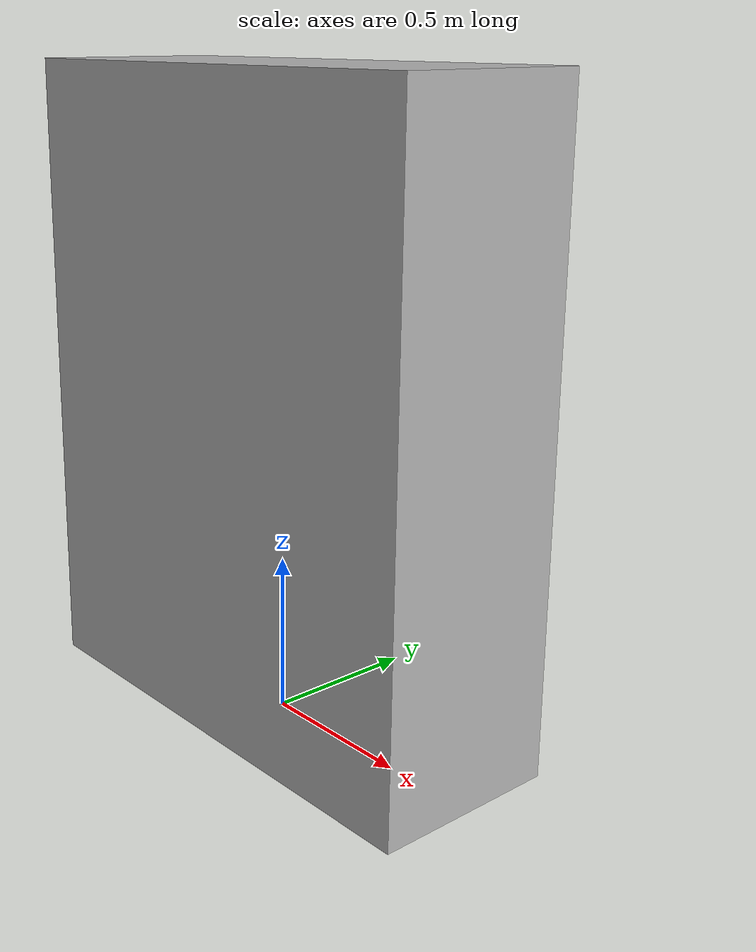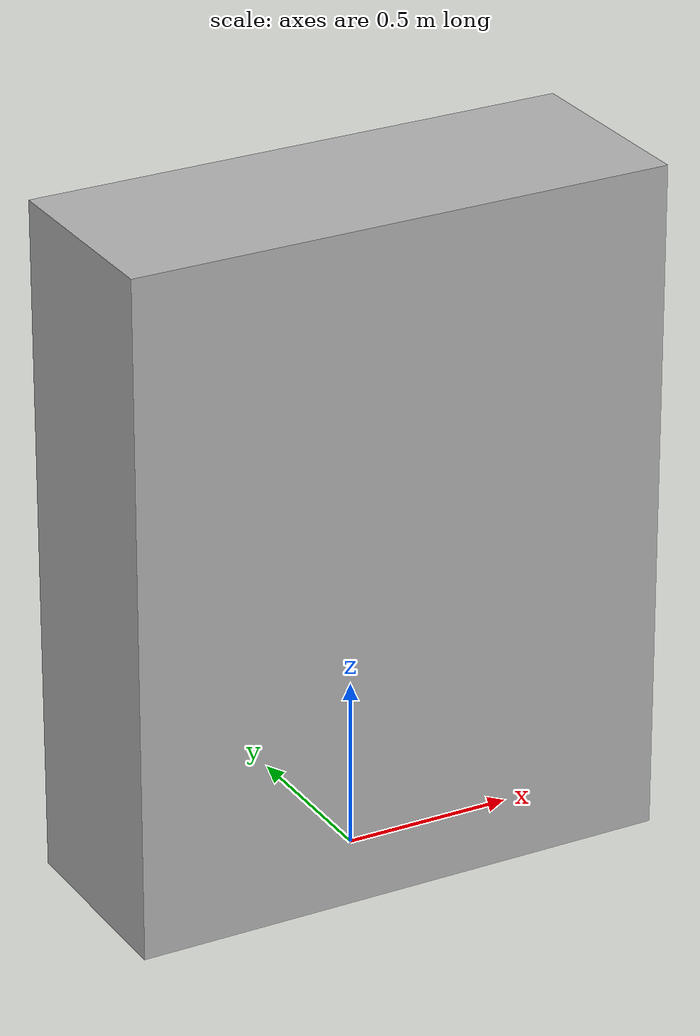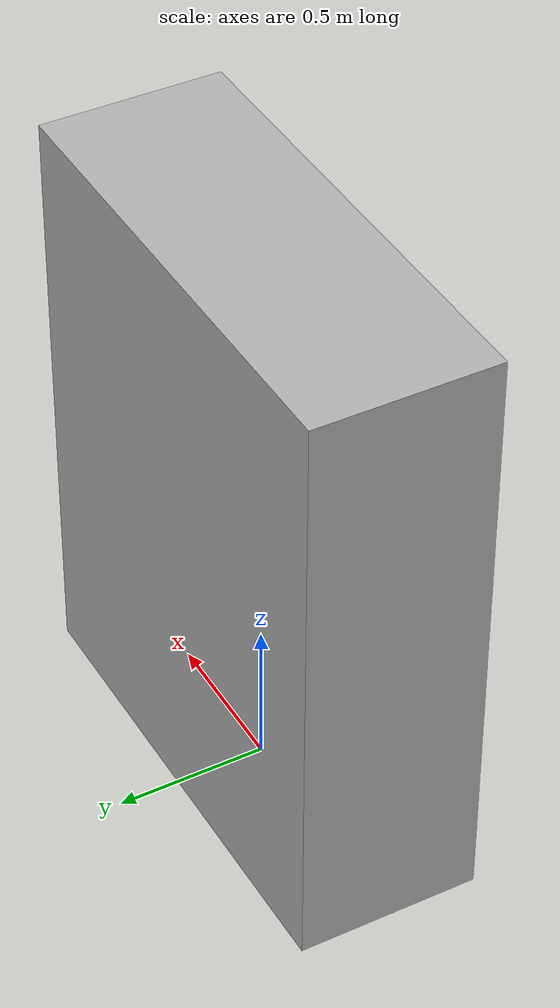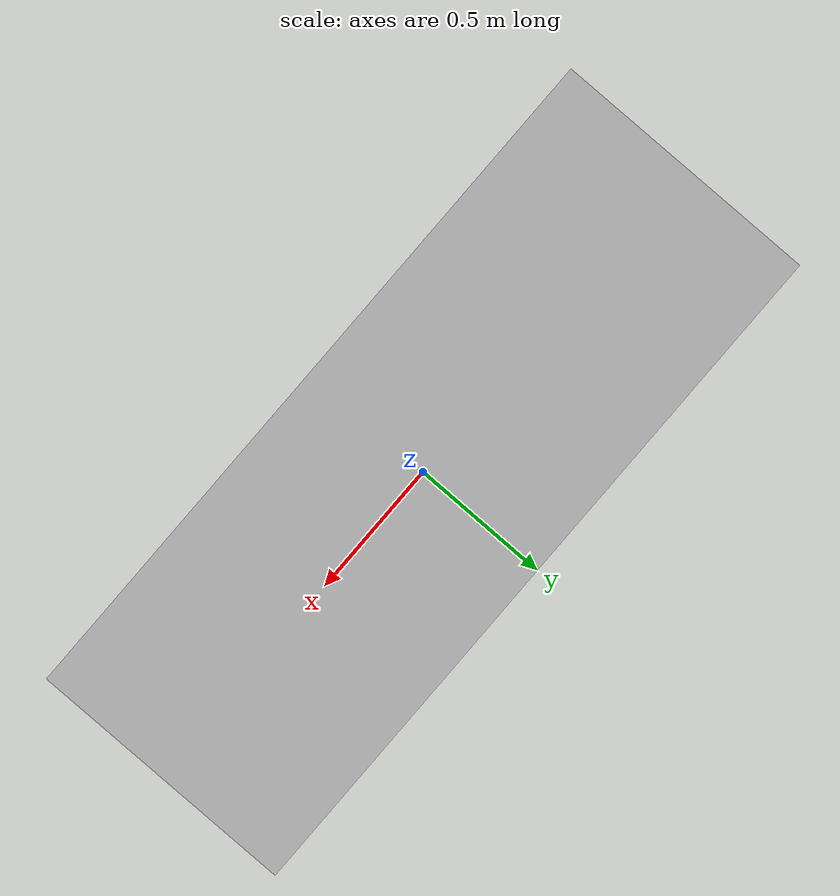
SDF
<?xml version="1.0"?>
<sdf version="1.7">
  <model name="shelf_big">
    <static>true</static>
    <link name="link">
      <pose>0 0 1.0 0 0 0</pose>
      <visual name="visual">
        <geometry>
          <box>
            <size>1.6 0.6 2.0</size>
          </box>
        </geometry>
        <material>
          <ambient>0.7 0.7 0.7 1</ambient>
          <diffuse>0.7 0.7 0.7 1</diffuse>
        </material>
      </visual>
      <collision name="collision">
        <geometry>
          <box>
            <size>1.6 0.6 2.0</size>
          </box>
        </geometry>
      </collision>
    </link>
  </model>
</sdf>
